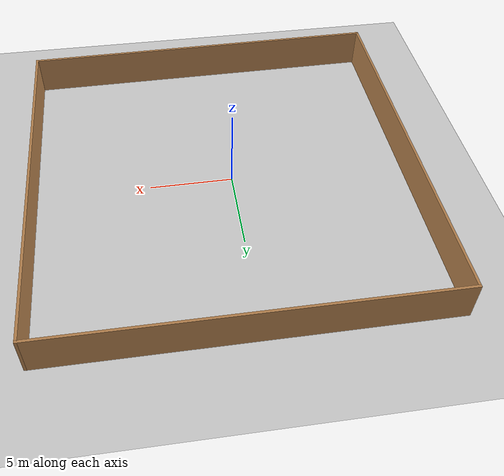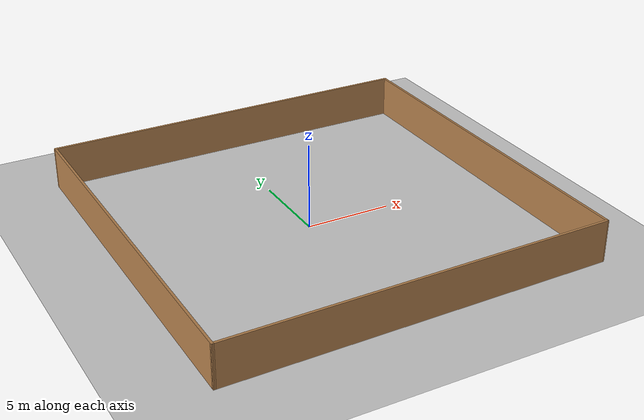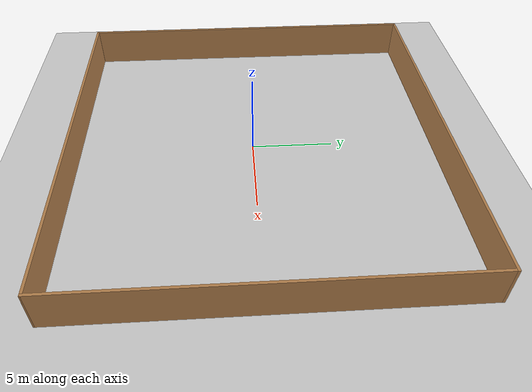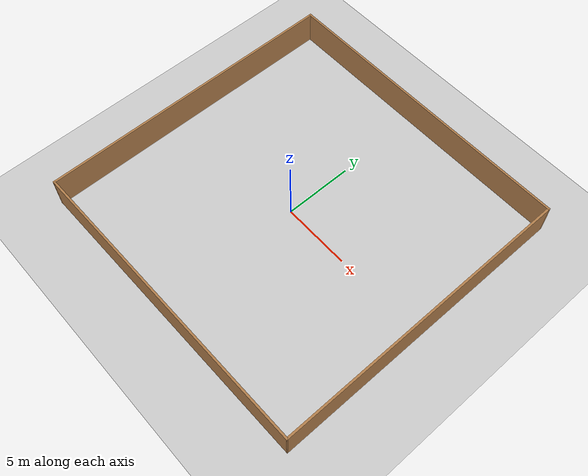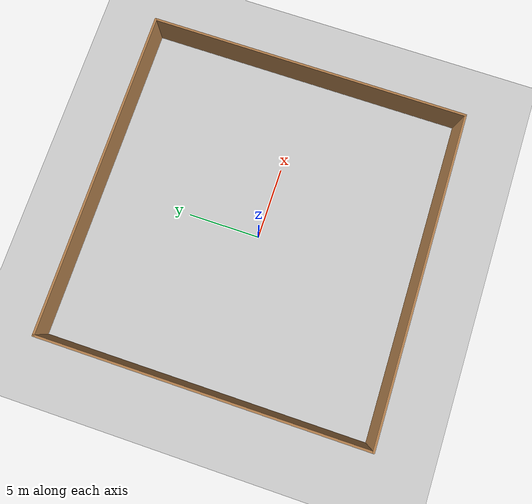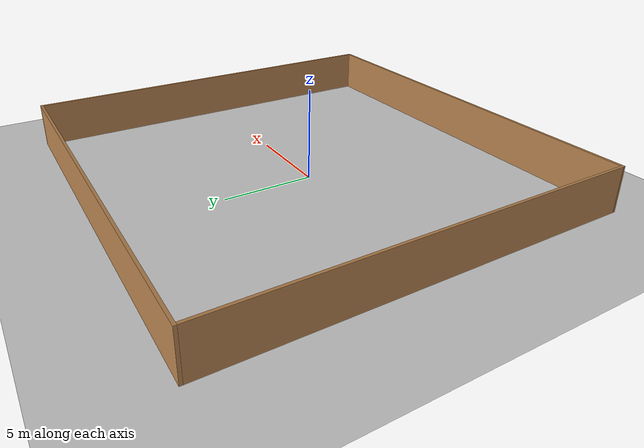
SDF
<sdf version='1.4'>
  <world name='default'>
    <!-- A global light source -->
    <include>
      <uri>model://sun</uri>
    </include>

    <!-- A ground plane -->
    <include>
      <uri>model://ground_plane</uri>
    </include>

    <physics type="ode">
      <real_time_update_rate>1000.0</real_time_update_rate>
      <max_step_size>0.001</max_step_size>
      <real_time_factor>1</real_time_factor>
      <ode>
        <solver>
          <type>quick</type>
          <iters>150</iters>
          <precon_iters>0</precon_iters>
          <sor>1.400000</sor>
          <use_dynamic_moi_rescaling>1</use_dynamic_moi_rescaling>
        </solver>
        <constraints>
          <cfm>0.00001</cfm>
          <erp>0.2</erp>
          <contact_max_correcting_vel>2000.000000</contact_max_correcting_vel>
          <contact_surface_layer>0.01000</contact_surface_layer>
        </constraints>
      </ode>
    </physics>

    <!-- Load world -->
    <include>
      <uri>model://my_house</uri>
    </include>

    <include>
      <uri>model://walls</uri>
    </include>

    <scene>
      <ambient>0.4 0.4 0.4 1</ambient>
      <background>0.7 0.7 0.7 1</background>
      <shadows>true</shadows>
    </scene>

    <gui fullscreen='0'>
      <camera name='user_camera'>
        <pose>0.8 0.0 12.0 0 1.5708 0</pose>
        <view_controller>orbit</view_controller>
      </camera>
    </gui>
  </world>
</sdf>

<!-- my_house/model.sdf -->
<sdf version="1.4">
  <model name="my_house">

    <static>1</static>
    <link name="link">
      <collision name="collision">
	<pose>0 0 -0.003 0 0 0</pose>
        <geometry>
            <mesh>
              <uri>model://my_house/meshes/uneven.dae</uri>
              <scale>1 1 1</scale>
            </mesh>
        </geometry>
      </collision>
      <visual name="visual">
	<pose>0 0 -0.003 0 0 0</pose>
        <geometry>
            <mesh>
              <uri>model://my_house/meshes/uneven.dae</uri>
              <scale>1 1 1</scale>
            </mesh>
        </geometry>
        <material>
          <ambient>150 75 0 1</ambient>
          <diffuse>150 75 0 1</diffuse>
          <specular>0.1 0.1 0.1 1</specular>
          <emissive>0 0 0 0</emissive>
        </material>
      </visual>
    </link>
    <link name="tree1">
      <collision name="collision">
	<pose>3 3 -0.004 0 0 0</pose>
        <geometry>
            <mesh>
              <uri>model://my_house/meshes/trees.dae</uri>
              <scale>1 1 1</scale>
            </mesh>
        </geometry>
      </collision>
      <visual name="visual">
	<pose>3 3 -0.004 0 0 0</pose>
        <geometry>
            <mesh>
              <uri>model://my_house/meshes/trees.dae</uri>
              <scale>1 1 1</scale>
            </mesh>
        </geometry>
        <material>
          <ambient>0 128 0 1</ambient>
          <diffuse>0 128 0 1</diffuse>
          <specular>0.1 0.1 0.1 1</specular>
          <emissive>0 0 0 0</emissive>
        </material>
      </visual>
    </link>
    <link name="tree2">
      <collision name="collision">
	<pose>2 2 -0.004 0 0 0</pose>
        <geometry>
            <mesh>
              <uri>model://my_house/meshes/trees.dae</uri>
              <scale>1 1 1</scale>
            </mesh>
        </geometry>
      </collision>
      <visual name="visual">
	<pose>2 2 -0.004 0 0 0</pose>
        <geometry>
            <mesh>
              <uri>model://my_house/meshes/trees.dae</uri>
              <scale>1 1 1</scale>
            </mesh>
        </geometry>
        <material>
          <ambient>0 128 0 1</ambient>
          <diffuse>0 128 0 1</diffuse>
          <specular>0.1 0.1 0.1 1</specular>
          <emissive>0 0 0 0</emissive>
        </material>
      </visual>
    </link>
    <link name="tree3">
      <collision name="collision">
	<pose>-3 -3 -0.004 0 0 0</pose>
        <geometry>
            <mesh>
              <uri>model://my_house/meshes/trees.dae</uri>
              <scale>1 1 1</scale>
            </mesh>
        </geometry>
      </collision>
      <visual name="visual">
	<pose>-3 -3 -0.004 0 0 0</pose>
        <geometry>
            <mesh>
              <uri>model://my_house/meshes/trees.dae</uri>
              <scale>1 1 1</scale>
            </mesh>
        </geometry>
        <material>
          <ambient>0 128 0 1</ambient>
          <diffuse>0 128 0 1</diffuse>
          <specular>0.1 0.1 0.1 1</specular>
          <emissive>0 0 0 0</emissive>
        </material>
      </visual>
    </link>
    <link name="tree4">
      <collision name="collision">
	<pose>6 6 -0.004 0 0 0</pose>
        <geometry>
            <mesh>
              <uri>model://my_house/meshes/trees.dae</uri>
              <scale>1 1 1</scale>
            </mesh>
        </geometry>
      </collision>
      <visual name="visual">
	<pose>6 6 -0.004 0 0 0</pose>
        <geometry>
            <mesh>
              <uri>model://my_house/meshes/trees.dae</uri>
              <scale>1 1 1</scale>
            </mesh>
        </geometry>
        <material>
          <ambient>0 128 0 1</ambient>
          <diffuse>0 128 0 1</diffuse>
          <specular>0.1 0.1 0.1 1</specular>
          <emissive>0 0 0 0</emissive>
        </material>
      </visual>
    </link>
    <link name="tree5">
      <collision name="collision">
	<pose>-6 6 -0.004 0 0 0</pose>
        <geometry>
            <mesh>
              <uri>model://my_house/meshes/trees.dae</uri>
              <scale>1 1 1</scale>
            </mesh>
        </geometry>
      </collision>
      <visual name="visual">
	<pose>-6 6 -0.004 0 0 0</pose>
        <geometry>
            <mesh>
              <uri>model://my_house/meshes/trees.dae</uri>
              <scale>1 1 1</scale>
            </mesh>
        </geometry>
        <material>
          <ambient>0 128 0 1</ambient>
          <diffuse>0 128 0 1</diffuse>
          <specular>0.1 0.1 0.1 1</specular>
          <emissive>0 0 0 0</emissive>
        </material>
      </visual>
    </link>
    <link name="tree6">
      <collision name="collision">
	<pose>9 -9 -0.004 0 0 0</pose>
        <geometry>
            <mesh>
              <uri>model://my_house/meshes/trees.dae</uri>
              <scale>1 1 1</scale>
            </mesh>
        </geometry>
      </collision>
      <visual name="visual">
	<pose>9 -9 -0.004 0 0 0</pose>
        <geometry>
            <mesh>
              <uri>model://my_house/meshes/trees.dae</uri>
              <scale>1 1 1</scale>
            </mesh>
        </geometry>
        <material>
          <ambient>0 128 0 1</ambient>
          <diffuse>0 128 0 1</diffuse>
          <specular>0.1 0.1 0.1 1</specular>
          <emissive>0 0 0 0</emissive>
        </material>
      </visual>
    </link>
    <link name="tree7">
      <collision name="collision">
	<pose>6 -7 -0.004 0 0 0</pose>
        <geometry>
            <mesh>
              <uri>model://my_house/meshes/trees.dae</uri>
              <scale>1 1 1</scale>
            </mesh>
        </geometry>
      </collision>
      <visual name="visual">
	<pose>6 -7 -0.004 0 0 0</pose>
        <geometry>
            <mesh>
              <uri>model://my_house/meshes/trees.dae</uri>
              <scale>1 1 1</scale>
            </mesh>
        </geometry>
        <material>
          <ambient>0 128 0 1</ambient>
          <diffuse>0 128 0 1</diffuse>
          <specular>0.1 0.1 0.1 1</specular>
          <emissive>0 0 0 0</emissive>
        </material>
      </visual>
    </link>
    <link name="tree8">
      <collision name="collision">
	<pose>1 1 -0.004 0 0 0</pose>
        <geometry>
            <mesh>
              <uri>model://my_house/meshes/trees.dae</uri>
              <scale>1 1 1</scale>
            </mesh>
        </geometry>
      </collision>
      <visual name="visual">
	<pose>1 1 -0.004 0 0 0</pose>
        <geometry>
            <mesh>
              <uri>model://my_house/meshes/trees.dae</uri>
              <scale>1 1 1</scale>
            </mesh>
        </geometry>
        <material>
          <ambient>0 128 0 1</ambient>
          <diffuse>0 128 0 1</diffuse>
          <specular>0.1 0.1 0.1 1</specular>
          <emissive>0 0 0 0</emissive>
        </material>
      </visual>
    </link>
    <link name="tree9">
      <collision name="collision">
	<pose>7.5 -7.5 -0.004 0 0 0</pose>
        <geometry>
            <mesh>
              <uri>model://my_house/meshes/trees.dae</uri>
              <scale>1 1 1</scale>
            </mesh>
        </geometry>
      </collision>
      <visual name="visual">
	<pose>7.5 -7.5 -0.004 0 0 0</pose>
        <geometry>
            <mesh>
              <uri>model://my_house/meshes/trees.dae</uri>
              <scale>1 1 1</scale>
            </mesh>
        </geometry>
        <material>
          <ambient>0 128 0 1</ambient>
          <diffuse>0 128 0 1</diffuse>
          <specular>0.1 0.1 0.1 1</specular>
          <emissive>0 0 0 0</emissive>
        </material>
      </visual>
    </link>
    <link name="onion1">
      <collision name="collision">
	<pose>7 2 -0.004 0 0 0</pose>
        <geometry>
            <mesh>
              <uri>model://my_house/meshes/onion.dae</uri>
              <scale>2 2 2</scale>
            </mesh>
        </geometry>
      </collision>
      <visual name="visual">
	<pose>7 2 -0.004 0 0 0</pose>
        <geometry>
            <mesh>
              <uri>model://my_house/meshes/onion.dae</uri>
              <scale>1 1 1</scale>
            </mesh>
        </geometry>
        <material>
          <ambient>0 128 0 1</ambient>
          <diffuse>0 128 0 1</diffuse>
          <specular>0.1 0.1 0.1 1</specular>
          <emissive>0 0 0 0</emissive>
        </material>
      </visual>
    </link>
    <link name="onion2">
      <collision name="collision">
	<pose>7 -2 -0.004 0 0 0</pose>
        <geometry>
            <mesh>
              <uri>model://my_house/meshes/onion.dae</uri>
              <scale>1 1 1</scale>
            </mesh>
        </geometry>
      </collision>
      <visual name="visual">
	<pose>7 -2 -0.004 0 0 0</pose>
        <geometry>
            <mesh>
              <uri>model://my_house/meshes/onion.dae</uri>
              <scale>2 2 2</scale>
            </mesh>
        </geometry>
        <material>
          <ambient>0 128 0 1</ambient>
          <diffuse>0 128 0 1</diffuse>
          <specular>0.1 0.1 0.1 1</specular>
          <emissive>0 0 0 0</emissive>
        </material>
      </visual>
    </link>
    <link name="onion3">
      <collision name="collision">
	<pose>-7 -2 -0.004 0 0 0</pose>
        <geometry>
            <mesh>
              <uri>model://my_house/meshes/onion.dae</uri>
              <scale>2 2 2</scale>
            </mesh>
        </geometry>
      </collision>
      <visual name="visual">
	<pose>-7 -2 -0.004 0 0 0</pose>
        <geometry>
            <mesh>
              <uri>model://my_house/meshes/onion.dae</uri>
              <scale>1 1 1</scale>
            </mesh>
        </geometry>
        <material>
          <ambient>0 128 0 1</ambient>
          <diffuse>0 128 0 1</diffuse>
          <specular>0.1 0.1 0.1 1</specular>
          <emissive>0 0 0 0</emissive>
        </material>
      </visual>
    </link>
    <link name="onion4">
      <collision name="collision">
	<pose>-7 2 -0.004 0 0 0</pose>
        <geometry>
            <mesh>
              <uri>model://my_house/meshes/onion.dae</uri>
              <scale>2 2 2</scale>
            </mesh>
        </geometry>
      </collision>
      <visual name="visual">
	<pose>-7 2 -0.004 0 0 0</pose>
        <geometry>
            <mesh>
              <uri>model://my_house/meshes/onion.dae</uri>
              <scale>1 1 1</scale>
            </mesh>
        </geometry>
        <material>
          <ambient>0 128 0 1</ambient>
          <diffuse>0 128 0 1</diffuse>
          <specular>0.1 0.1 0.1 1</specular>
          <emissive>0 0 0 0</emissive>
        </material>
      </visual>
    </link>
    <link name="onion5">
      <collision name="collision">
	<pose>7 3 -0.004 0 0 0</pose>
        <geometry>
            <mesh>
              <uri>model://my_house/meshes/onion.dae</uri>
              <scale>2 2 2</scale>
            </mesh>
        </geometry>
      </collision>
      <visual name="visual">
	<pose>7 3 -0.004 0 0 0</pose>
        <geometry>
            <mesh>
              <uri>model://my_house/meshes/onion.dae</uri>
              <scale>2 2 2</scale>
            </mesh>
        </geometry>
        <material>
          <ambient>0 128 0 1</ambient>
          <diffuse>0 128 0 1</diffuse>
          <specular>0.1 0.1 0.1 1</specular>
          <emissive>0 0 0 0</emissive>
        </material>
      </visual>
    </link>
    <link name="onion6">
      <collision name="collision">
	<pose>7 -3 -0.004 0 0 0</pose>
        <geometry>
            <mesh>
              <uri>model://my_house/meshes/onion.dae</uri>
              <scale>2 2 2</scale>
            </mesh>
        </geometry>
      </collision>
      <visual name="visual">
	<pose>7 -3 -0.004 0 0 0</pose>
        <geometry>
            <mesh>
              <uri>model://my_house/meshes/onion.dae</uri>
              <scale>2 2 2</scale>
            </mesh>
        </geometry>
        <material>
          <ambient>0 128 0 1</ambient>
          <diffuse>0 128 0 1</diffuse>
          <specular>0.1 0.1 0.1 1</specular>
          <emissive>0 0 0 0</emissive>
        </material>
      </visual>
    </link>
    <link name="onion7">
      <collision name="collision">
	<pose>-7 -3 -0.004 0 0 0</pose>
        <geometry>
            <mesh>
              <uri>model://my_house/meshes/onion.dae</uri>
              <scale>2 2 2</scale>
            </mesh>
        </geometry>
      </collision>
      <visual name="visual">
	<pose>-7 -3 -0.004 0 0 0</pose>
        <geometry>
            <mesh>
              <uri>model://my_house/meshes/onion.dae</uri>
              <scale>2 2 2</scale>
            </mesh>
        </geometry>
        <material>
          <ambient>0 128 0 1</ambient>
          <diffuse>0 128 0 1</diffuse>
          <specular>0.1 0.1 0.1 1</specular>
          <emissive>0 0 0 0</emissive>
        </material>
      </visual>
    </link>
    <link name="onion8">
      <collision name="collision">
	<pose>-7 3 -0.004 0 0 0</pose>
        <geometry>
            <mesh>
              <uri>model://my_house/meshes/onion.dae</uri>
              <scale>1 1 1</scale>
            </mesh>
        </geometry>
      </collision>
      <visual name="visual">
	<pose>-7 3 -0.004 0 0 0</pose>
        <geometry>
            <mesh>
              <uri>model://my_house/meshes/onion.dae</uri>
              <scale>2 2 2</scale>
            </mesh>
        </geometry>
        <material>
          <ambient>0 128 0 1</ambient>
          <diffuse>0 128 0 1</diffuse>
          <specular>0.1 0.1 0.1 1</specular>
          <emissive>0 0 0 0</emissive>
        </material>
      </visual>
    </link>
    <link name="tree10">
      <collision name="collision">
	<pose>8 4 -0.004 0 0 0</pose>
        <geometry>
            <mesh>
              <uri>model://my_house/meshes/trees.dae</uri>
              <scale>1 1 1</scale>
            </mesh>
        </geometry>
      </collision>
      <visual name="visual">
	<pose>8 4 -0.004 0 0 0</pose>
        <geometry>
            <mesh>
              <uri>model://my_house/meshes/trees.dae</uri>
              <scale>1 1 1</scale>
            </mesh>
        </geometry>
        <material>
          <ambient>0 128 0 1</ambient>
          <diffuse>0 128 0 1</diffuse>
          <specular>0.1 0.1 0.1 1</specular>
          <emissive>0 0 0 0</emissive>
        </material>
      </visual>
    </link>
    <link name="tree11">
      <collision name="collision">
	<pose>8 -4 -0.004 0 0 0</pose>
        <geometry>
            <mesh>
              <uri>model://my_house/meshes/trees.dae</uri>
              <scale>1 1 1</scale>
            </mesh>
        </geometry>
      </collision>
      <visual name="visual">
	<pose>8 -4 -0.004 0 0 0</pose>
        <geometry>
            <mesh>
              <uri>model://my_house/meshes/trees.dae</uri>
              <scale>1 1 1</scale>
            </mesh>
        </geometry>
        <material>
          <ambient>0 128 0 1</ambient>
          <diffuse>0 128 0 1</diffuse>
          <specular>0.1 0.1 0.1 1</specular>
          <emissive>0 0 0 0</emissive>
        </material>
      </visual>
    </link>
    <link name="tree12">
      <collision name="collision">
	<pose>-8 -4 -0.004 0 0 0</pose>
        <geometry>
            <mesh>
              <uri>model://my_house/meshes/trees.dae</uri>
              <scale>1 1 1</scale>
            </mesh>
        </geometry>
      </collision>
      <visual name="visual">
	<pose>-8 -4 -0.004 0 0 0</pose>
        <geometry>
            <mesh>
              <uri>model://my_house/meshes/trees.dae</uri>
              <scale>1 1 1</scale>
            </mesh>
        </geometry>
        <material>
          <ambient>0 128 0 1</ambient>
          <diffuse>0 128 0 1</diffuse>
          <specular>0.1 0.1 0.1 1</specular>
          <emissive>0 0 0 0</emissive>
        </material>
      </visual>
    </link>
    <link name="tree13">
      <collision name="collision">
	<pose>-8 4 -0.004 0 0 0</pose>
        <geometry>
            <mesh>
              <uri>model://my_house/meshes/trees.dae</uri>
              <scale>1 1 1</scale>
            </mesh>
        </geometry>
      </collision>
      <visual name="visual">
	<pose>-8 4 -0.004 0 0 0</pose>
        <geometry>
            <mesh>
              <uri>model://my_house/meshes/trees.dae</uri>
              <scale>1 1 1</scale>
            </mesh>
        </geometry>
        <material>
          <ambient>0 128 0 1</ambient>
          <diffuse>0 128 0 1</diffuse>
          <specular>0.1 0.1 0.1 1</specular>
          <emissive>0 0 0 0</emissive>
        </material>
      </visual>
    </link>
    <link name="tree14">
      <collision name="collision">
	<pose>8 6 -0.004 0 0 0</pose>
        <geometry>
            <mesh>
              <uri>model://my_house/meshes/trees.dae</uri>
              <scale>1 1 1</scale>
            </mesh>
        </geometry>
      </collision>
      <visual name="visual">
	<pose>8 6 -0.004 0 0 0</pose>
        <geometry>
            <mesh>
              <uri>model://my_house/meshes/trees.dae</uri>
              <scale>1 1 1</scale>
            </mesh>
        </geometry>
        <material>
          <ambient>0 128 0 1</ambient>
          <diffuse>0 128 0 1</diffuse>
          <specular>0.1 0.1 0.1 1</specular>
          <emissive>0 0 0 0</emissive>
        </material>
      </visual>
    </link>
    <link name="tree15">
      <collision name="collision">
	<pose>-8 -6 -0.004 0 0 0</pose>
        <geometry>
            <mesh>
              <uri>model://my_house/meshes/trees.dae</uri>
              <scale>1 1 1</scale>
            </mesh>
        </geometry>
      </collision>
      <visual name="visual">
	<pose>-8 -6 -0.004 0 0 0</pose>
        <geometry>
            <mesh>
              <uri>model://my_house/meshes/trees.dae</uri>
              <scale>1 1 1</scale>
            </mesh>
        </geometry>
        <material>
          <ambient>0 128 0 1</ambient>
          <diffuse>0 128 0 1</diffuse>
          <specular>0.1 0.1 0.1 1</specular>
          <emissive>0 0 0 0</emissive>
        </material>
      </visual>
    </link>
    <link name="tree16">
      <collision name="collision">
	<pose>8 -6 -0.004 0 0 0</pose>
        <geometry>
            <mesh>
              <uri>model://my_house/meshes/trees.dae</uri>
              <scale>1 1 1</scale>
            </mesh>
        </geometry>
      </collision>
      <visual name="visual">
	<pose>8 -7 -0.004 0 0 0</pose>
        <geometry>
            <mesh>
              <uri>model://my_house/meshes/trees.dae</uri>
              <scale>1 1 1</scale>
            </mesh>
        </geometry>
        <material>
          <ambient>0 128 0 1</ambient>
          <diffuse>0 128 0 1</diffuse>
          <specular>0.1 0.1 0.1 1</specular>
          <emissive>0 0 0 0</emissive>
        </material>
      </visual>
    </link>
    <link name="tree17">
      <collision name="collision">
	<pose>-8 6 -0.004 0 0 0</pose>
        <geometry>
            <mesh>
              <uri>model://my_house/meshes/trees.dae</uri>
              <scale>1 1 1</scale>
            </mesh>
        </geometry>
      </collision>
      <visual name="visual">
	<pose>-8 6 -0.004 0 0 0</pose>
        <geometry>
            <mesh>
              <uri>model://my_house/meshes/trees.dae</uri>
              <scale>1 1 1</scale>
            </mesh>
        </geometry>
        <material>
          <ambient>0 128 0 1</ambient>
          <diffuse>0 128 0 1</diffuse>
          <specular>0.1 0.1 0.1 1</specular>
          <emissive>0 0 0 0</emissive>
        </material>
      </visual>
    </link>
    <link name="tree17">
      <collision name="collision">
	<pose>6 8 -0.004 0 0 0</pose>
        <geometry>
            <mesh>
              <uri>model://my_house/meshes/trees.dae</uri>
              <scale>1 1 1</scale>
            </mesh>
        </geometry>
      </collision>
      <visual name="visual">
	<pose>6 8 -0.004 0 0 0</pose>
        <geometry>
            <mesh>
              <uri>model://my_house/meshes/trees.dae</uri>
              <scale>1 1 1</scale>
            </mesh>
        </geometry>
        <material>
          <ambient>0 128 0 1</ambient>
          <diffuse>0 128 0 1</diffuse>
          <specular>0.1 0.1 0.1 1</specular>
          <emissive>0 0 0 0</emissive>
        </material>
      </visual>
    </link>
  </model>
</sdf>

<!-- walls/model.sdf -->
<sdf version='1.6'>
  <model name='walls'>
    <pose frame=''>0.571993 0.231631 0 0 -0 0</pose>
    <link name='Wall_10'>
      <collision name='Wall_10_Collision'>
        <geometry>
          <box>
            <size>22.25 0.15 2.5</size>
          </box>
        </geometry>
        <pose frame=''>0 0 1.25 0 -0 0</pose>
      </collision>
      <visual name='Wall_10_Visual'>
        <pose frame=''>0 0 1.25 0 -0 0</pose>
        <geometry>
          <box>
            <size>22.25 0.15 2.5</size>
          </box>
        </geometry>
        <material>
          <script>
            <uri>file://media/materials/scripts/gazebo.material</uri>
            <name>Gazebo/Wood</name>
          </script>
          <ambient>1 1 1 1</ambient>
        </material>
        <meta>
          <layer>0</layer>
        </meta>
      </visual>
      <pose frame=''>11.3 0.125412 0 0 -0 1.5708</pose>
    </link>
    <link name='Wall_11'>
      <collision name='Wall_11_Collision'>
        <geometry>
          <box>
            <size>22.75 0.15 2.5</size>
          </box>
        </geometry>
        <pose frame=''>0 0 1.25 0 -0 0</pose>
      </collision>
      <visual name='Wall_11_Visual'>
        <pose frame=''>0 0 1.25 0 -0 0</pose>
        <geometry>
          <box>
            <size>22.75 0.15 2.5</size>
          </box>
        </geometry>
        <material>
          <script>
            <uri>file://media/materials/scripts/gazebo.material</uri>
            <name>Gazebo/Wood</name>
          </script>
          <ambient>1 1 1 1</ambient>
        </material>
        <meta>
          <layer>0</layer>
        </meta>
      </visual>
      <pose frame=''>0 11.1754 0 0 -0 3.14159</pose>
    </link>
    <link name='Wall_12'>
      <collision name='Wall_12_Collision'>
        <geometry>
          <box>
            <size>22.5 0.15 2.5</size>
          </box>
        </geometry>
        <pose frame=''>0 0 1.25 0 -0 0</pose>
      </collision>
      <visual name='Wall_12_Visual'>
        <pose frame=''>0 0 1.25 0 -0 0</pose>
        <geometry>
          <box>
            <size>22.5 0.15 2.5</size>
          </box>
        </geometry>
        <material>
          <script>
            <uri>file://media/materials/scripts/gazebo.material</uri>
            <name>Gazebo/Wood</name>
          </script>
          <ambient>1 1 1 1</ambient>
        </material>
        <meta>
          <layer>0</layer>
        </meta>
      </visual>
      <pose frame=''>-11.3 0.000412 0 0 -0 -1.5708</pose>
    </link>
    <link name='Wall_9'>
      <collision name='Wall_9_Collision'>
        <geometry>
          <box>
            <size>22.7514 0.15 2.5</size>
          </box>
        </geometry>
        <pose frame=''>0 0 1.25 0 -0 0</pose>
      </collision>
      <visual name='Wall_9_Visual'>
        <pose frame=''>0 0 1.25 0 -0 0</pose>
        <geometry>
          <box>
            <size>22.7514 0.15 2.5</size>
          </box>
        </geometry>
        <material>
          <script>
            <uri>file://media/materials/scripts/gazebo.material</uri>
            <name>Gazebo/Wood</name>
          </script>
          <ambient>1 1 1 1</ambient>
        </material>
        <meta>
          <layer>0</layer>
        </meta>
      </visual>
      <pose frame=''>0 -11.0496 0 0 -0 0.011061</pose>
    </link>
    <static>1</static>
  </model>
</sdf>
